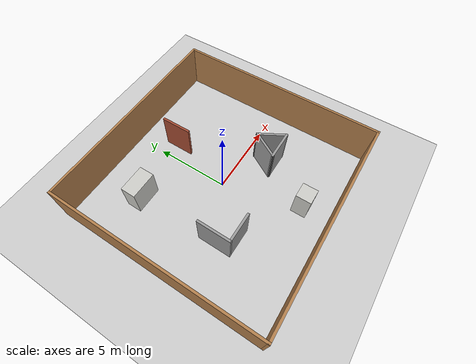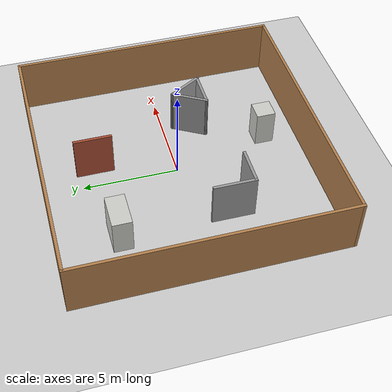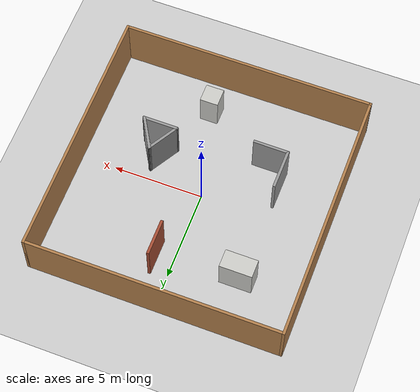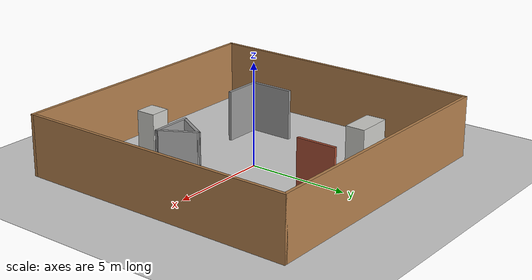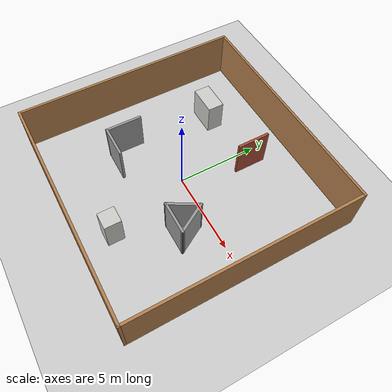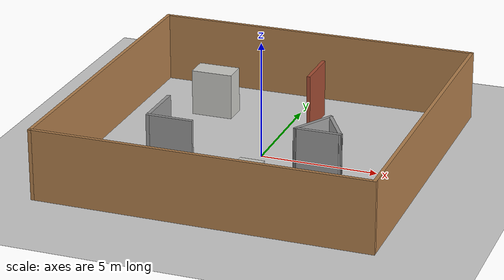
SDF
<sdf version="1.7">
 <world name="default">
  <light name="sun" type="directional">
   <pose>0 0 10 0 -0 0</pose>
   <diffuse>0.8 0.8 0.8 1</diffuse>
   <specular>0.2 0.2 0.2 1</specular>
   <attenuation>
    <range>1000</range>
    <constant>0.9</constant>
    <linear>0.01</linear>
    <quadratic>0.001</quadratic>
   </attenuation>
   <direction>-0.5 0.1 -0.9</direction>
   <spot><inner_angle>0</inner_angle><outer_angle>0</outer_angle><falloff>0</falloff></spot>
  </light>
  <model name="ground_plane">
   <static>1</static>
   <link name="link">
    <collision name="collision">
     <geometry><plane><normal>0 0 1</normal><size>100 100</size></plane></geometry>
     <surface>
      <contact><collide_bitmask>65535</collide_bitmask></contact>
      <friction><ode><mu>100</mu><mu2>50</mu2></ode></friction>
     </surface>
    </collision>
    <visual name="visual">
     <cast_shadows>0</cast_shadows>
     <geometry><plane><normal>0 0 1</normal><size>100 100</size></plane></geometry>
     <material>
      <script><uri>file://media/materials/scripts/gazebo.material</uri><name>Gazebo/Grey</name></script>
     </material>
    </visual>
   </link>
  </model>
  <gravity>0 0 -9.8</gravity>
  <magnetic_field>6e-06 2.3e-05 -4.2e-05</magnetic_field>
  <atmosphere type="adiabatic"/>
  <physics type="ode">
   <max_step_size>0.001</max_step_size>
   <real_time_factor>1</real_time_factor>
   <real_time_update_rate>1000</real_time_update_rate>
  </physics>
  <scene><ambient>0.4 0.4 0.4 1</ambient><background>0.7 0.7 0.7 1</background><shadows>1</shadows></scene>
  <spherical_coordinates>
   <surface_model>EARTH_WGS84</surface_model>
   <latitude_deg>0</latitude_deg>
   <longitude_deg>0</longitude_deg>
   <elevation>0</elevation>
   <heading_deg>0</heading_deg>
  </spherical_coordinates>
  <model name="room_wall_14_14">
   <link name="Wall_0">
    <collision name="Wall_0_Collision">
     <geometry><box><size>14.15 0.15 3</size></box></geometry>
     <pose>0 0 1.5 0 -0 0</pose>
    </collision>
    <visual name="Wall_0_Visual">
     <pose>0 0 1.5 0 -0 0</pose>
     <geometry><box><size>14.15 0.15 3</size></box></geometry>
     <material>
      <script><uri>file://media/materials/scripts/gazebo.material</uri><name>Gazebo/Wood</name></script>
      <ambient>1 1 1 1</ambient>
     </material>
     <meta><layer>0</layer></meta>
    </visual>
    <pose>-7 0 0 0 -0 1.5708</pose>
   </link>
   <link name="Wall_1">
    <collision name="Wall_1_Collision">
     <geometry><box><size>14.15 0.15 3</size></box></geometry>
     <pose>0 0 1.5 0 -0 0</pose>
    </collision>
    <visual name="Wall_1_Visual">
     <pose>0 0 1.5 0 -0 0</pose>
     <geometry><box><size>14.15 0.15 3</size></box></geometry>
     <material>
      <script><uri>file://media/materials/scripts/gazebo.material</uri><name>Gazebo/Wood</name></script>
      <ambient>1 1 1 1</ambient>
     </material>
     <meta><layer>0</layer></meta>
    </visual>
    <pose>0 7 0 0 -0 0</pose>
   </link>
   <link name="Wall_2">
    <collision name="Wall_2_Collision">
     <geometry><box><size>14.15 0.15 3</size></box></geometry>
     <pose>0 0 1.5 0 -0 0</pose>
    </collision>
    <visual name="Wall_2_Visual">
     <pose>0 0 1.5 0 -0 0</pose>
     <geometry><box><size>14.15 0.15 3</size></box></geometry>
     <material>
      <script><uri>file://media/materials/scripts/gazebo.material</uri><name>Gazebo/Wood</name></script>
      <ambient>1 1 1 1</ambient>
     </material>
     <meta><layer>0</layer></meta>
    </visual>
    <pose>7 0 0 0 -0 -1.5708</pose>
   </link>
   <link name="Wall_3">
    <collision name="Wall_3_Collision">
     <geometry><box><size>14.15 0.15 3</size></box></geometry>
     <pose>0 0 1.5 0 -0 0</pose>
    </collision>
    <visual name="Wall_3_Visual">
     <pose>0 0 1.5 0 -0 0</pose>
     <geometry><box><size>14.15 0.15 3</size></box></geometry>
     <material>
      <script><uri>file://media/materials/scripts/gazebo.material</uri><name>Gazebo/Wood</name></script>
      <ambient>1 1 1 1</ambient>
     </material>
     <meta><layer>0</layer></meta>
    </visual>
    <pose>0 -7 0 0 -0 3.14159</pose>
   </link>
   <static>1</static>
  </model>
  <model name="box_1.8_1_2">
   <pose>-3.04921 5.27341 0 0 -0 0</pose>
   <link name="Wall_0">
    <collision name="Wall_0_Collision">
     <geometry><box><size>1.8 1 2</size></box></geometry>
     <pose>0 0 1 0 -0 0</pose>
    </collision>
    <visual name="Wall_0_Visual">
     <pose>0 0 1 0 -0 0</pose>
     <geometry><box><size>1.8 1 2</size></box></geometry>
     <material>
      <script><uri>file://media/materials/scripts/gazebo.material</uri><name>Gazebo/CeilingTiled</name></script>
      <ambient>0.921569 0.807843 0.615686 1</ambient>
     </material>
     <meta><layer>0</layer></meta>
    </visual>
    <pose>-0.455 -1.44 0 0 -0 0</pose>
   </link>
   <static>1</static>
  </model>
  <model name="box_1_1_2">
   <pose>2.16379 -3.64484 0 0 -0 0</pose>
   <link name="Wall_0">
    <collision name="Wall_0_Collision">
     <geometry><box><size>1.01 1 2</size></box></geometry>
     <pose>0 0 1 0 -0 0</pose>
    </collision>
    <visual name="Wall_0_Visual">
     <pose>0 0 1 0 -0 0</pose>
     <geometry><box><size>1.01 1 2</size></box></geometry>
     <material>
      <script><uri>file://media/materials/scripts/gazebo.material</uri><name>Gazebo/CeilingTiled</name></script>
      <ambient>0.921569 0.807843 0.615686 1</ambient>
     </material>
     <meta><layer>0</layer></meta>
    </visual>
    <pose>-0.85 -1.44 0 0 -0 0</pose>
   </link>
   <static>1</static>
  </model>
  <model name="obstacle_L_shape_2_2">
   <pose>-1.31276 -2.40675 0 0 0 -1.57738</pose>
   <link name="Wall_13">
    <collision name="Wall_13_Collision">
     <geometry><box><size>2 0.15 2.5</size></box></geometry>
     <pose>0 0 1.25 0 -0 0</pose>
    </collision>
    <visual name="Wall_13_Visual">
     <pose>0 0 1.25 0 -0 0</pose>
     <geometry><box><size>2 0.15 2.5</size></box></geometry>
     <material>
      <script><uri>file://media/materials/scripts/gazebo.material</uri><name>Gazebo/Grey</name></script>
      <ambient>1 1 1 1</ambient>
     </material>
     <meta><layer>0</layer></meta>
    </visual>
    <pose>0.524153 -1.53997 0 0 -0 -1.5708</pose>
   </link>
   <link name="Wall_14">
    <collision name="Wall_14_Collision">
     <geometry><box><size>2.25 0.15 2.5</size></box></geometry>
     <pose>0 0 1.25 0 -0 0</pose>
    </collision>
    <visual name="Wall_14_Visual">
     <pose>0 0 1.25 0 -0 0</pose>
     <geometry><box><size>2.25 0.15 2.5</size></box></geometry>
     <material>
      <script><uri>file://media/materials/scripts/gazebo.material</uri><name>Gazebo/Grey</name></script>
      <ambient>1 1 1 1</ambient>
     </material>
     <meta><layer>0</layer></meta>
    </visual>
    <pose>-0.525847 -2.46497 0 0 -0 3.14159</pose>
   </link>
   <static>1</static>
  </model>
  <model name="ob_triangle_2">
   <pose>3.18016 2.48464 0 0 -0 0</pose>
   <link name="Wall_16">
    <collision name="Wall_16_Collision">
     <geometry><box><size>2 0.15 2.5</size></box></geometry>
     <pose>0 0 1.25 0 -0 0</pose>
    </collision>
    <visual name="Wall_16_Visual">
     <pose>0 0 1.25 0 -0 0</pose>
     <geometry><box><size>2 0.15 2.5</size></box></geometry>
     <material>
      <script><uri>file://media/materials/scripts/gazebo.material</uri><name>Gazebo/Grey</name></script>
      <ambient>1 1 1 1</ambient>
     </material>
     <meta><layer>0</layer></meta>
    </visual>
    <pose>-0.4625 -3.88374 0 0 -0 -2.0944</pose>
   </link>
   <link name="Wall_17">
    <collision name="Wall_17_Collision">
     <geometry><box><size>2 0.15 2.5</size></box></geometry>
     <pose>0 0 1.25 0 -0 0</pose>
    </collision>
    <visual name="Wall_17_Visual">
     <pose>0 0 1.25 0 -0 0</pose>
     <geometry><box><size>2 0.15 2.5</size></box></geometry>
     <material>
      <script><uri>file://media/materials/scripts/gazebo.material</uri><name>Gazebo/Grey</name></script>
      <ambient>1 1 1 1</ambient>
     </material>
     <meta><layer>0</layer></meta>
    </visual>
    <pose>0 -4.68482 0 0 -0 0</pose>
   </link>
   <link name="Wall_18">
    <collision name="Wall_18_Collision">
     <geometry><box><size>2 0.15 2.5</size></box></geometry>
     <pose>0 0 1.25 0 -0 0</pose>
    </collision>
    <visual name="Wall_18_Visual">
     <pose>0 0 1.25 0 -0 0</pose>
     <geometry><box><size>2 0.15 2.5</size></box></geometry>
     <material>
      <script><uri>file://media/materials/scripts/gazebo.material</uri><name>Gazebo/Grey</name></script>
      <ambient>1 1 1 1</ambient>
     </material>
     <meta><layer>0</layer></meta>
    </visual>
    <pose>0.4625 -3.88374 0 0 -0 2.0944</pose>
   </link>
   <static>1</static>
  </model>
  <model name="ob_wall_2">
   <pose>1.68103 6.9835 0 0 -0 0</pose>
   <link name="Wall_20">
    <collision name="Wall_20_Collision">
     <geometry><box><size>2 0.15 2.5</size></box></geometry>
     <pose>0 0 1.25 0 -0 0</pose>
    </collision>
    <visual name="Wall_20_Visual">
     <pose>0 0 1.25 0 -0 0</pose>
     <geometry><box><size>2 0.15 2.5</size></box></geometry>
     <material>
      <script><uri>file://media/materials/scripts/gazebo.material</uri><name>Gazebo/Bricks</name></script>
      <ambient>0.996078 0.47451 0.0196078 1</ambient>
     </material>
     <meta><layer>0</layer></meta>
    </visual>
    <pose>-0.727 -2.805 0 0 -0 -1.5708</pose>
   </link>
   <static>1</static>
  </model>
 </world>
</sdf>
